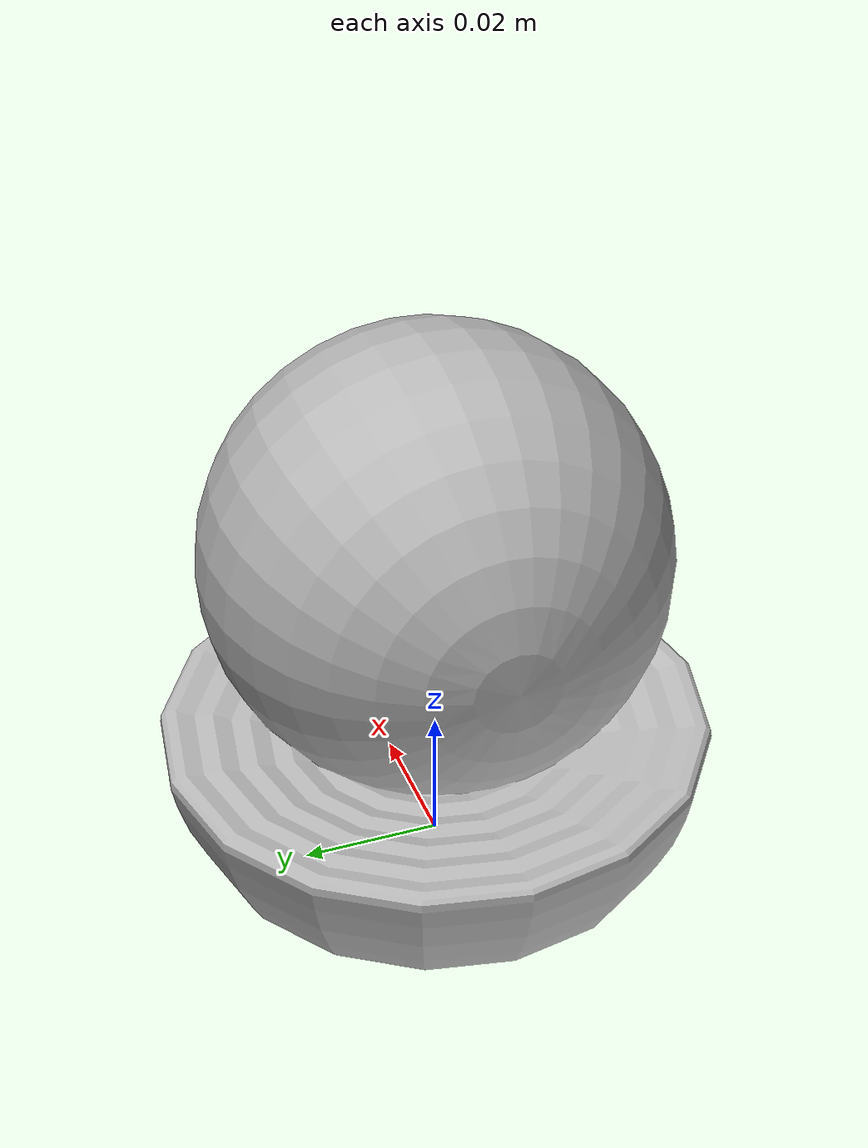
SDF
<?xml version='1.0'?>
<sdf version='1.4'>
  <model name='s__1853'>
    <pose>0 0 0 0 0 0</pose>
    <static>true</static>
    <link name='link'>
      <collision name='collision'>
        <pose>0 0 0 0 0 0</pose>
        <geometry>
          <box>
            <size>0.08 0.08 2</size>
          </box>
        </geometry>
      </collision>
      <visual name='visual'>
        <pose>0 0 0 0 0 0</pose>
        <geometry>
          <mesh><uri>model://s__1853/s__1853.dae</uri></mesh>
        </geometry>
      </visual>
    </link>
  </model>
</sdf>
